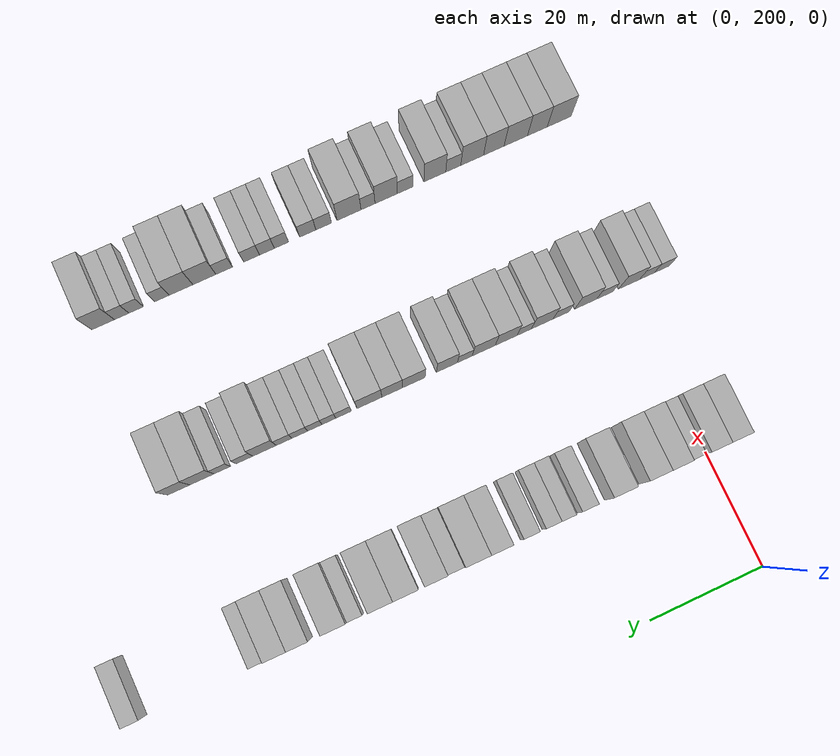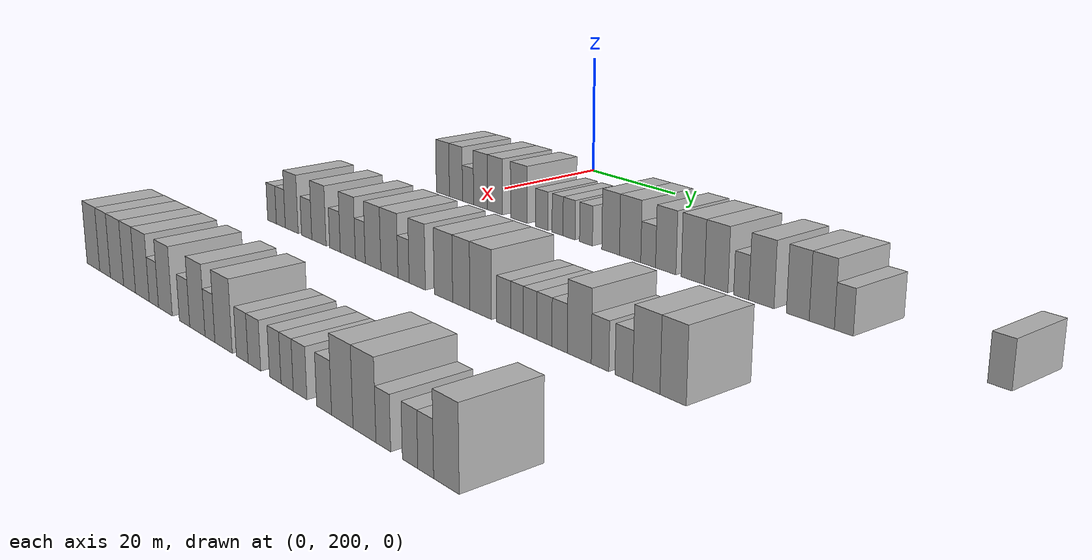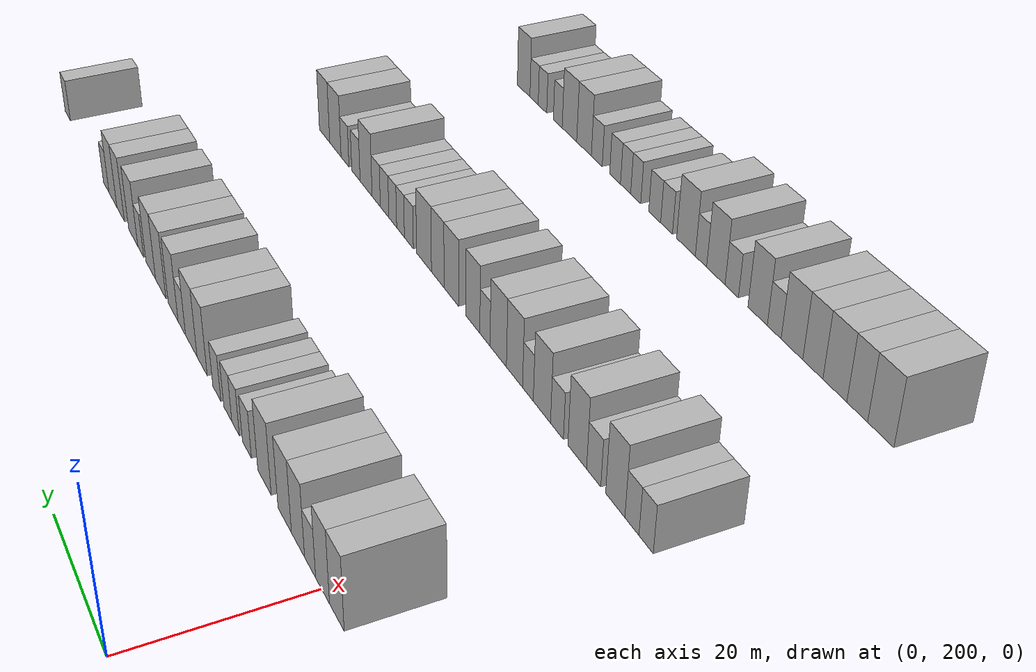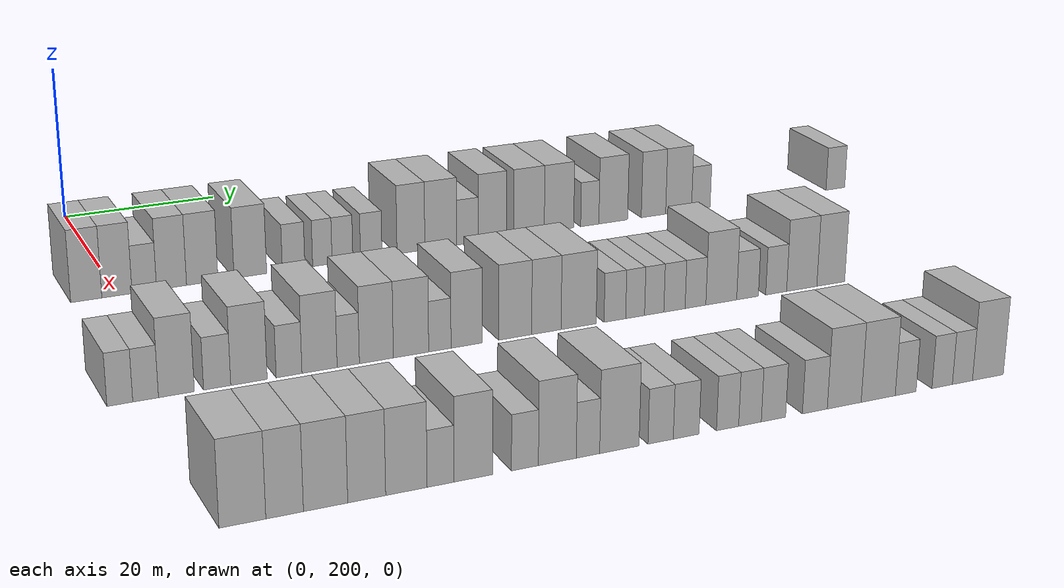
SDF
<sdf version="1.6">
 <world name="default">
  <model name="building_122">
   <static>1</static>
   <pose>25.0000 196.1060 0 0.000000 0.000000 0.000000</pose>
   <link name="link">
    <pose>0 0 4.50 0 0 0</pose>
    <collision name="collision"><geometry><box><size>10.0000 3.6825 9.0000</size></box></geometry></collision>
    <visual name="visual">
     <cast_shadows>0</cast_shadows>
     <geometry><box><size>10.0000 3.6825 9.0000</size></box></geometry>
     <material>
      <script>
       <uri>model://HANNAS_wall/materials/scripts</uri>
       <uri>model://HANNAS_wall/materials/textures</uri>
       <name>vrc/HANNAS_wall</name>
      </script>
     </material>
    </visual>
   </link>
  </model>
  <model name="building_123">
   <static>1</static>
   <pose>25.0000 199.7575 0 0.000000 0.000000 0.000000</pose>
   <link name="link">
    <pose>0 0 4.50 0 0 0</pose>
    <collision name="collision"><geometry><box><size>10.0000 3.6205 9.0000</size></box></geometry></collision>
    <visual name="visual">
     <cast_shadows>0</cast_shadows>
     <geometry><box><size>10.0000 3.6205 9.0000</size></box></geometry>
     <material>
      <script>
       <uri>model://HANNAS_wall/materials/scripts</uri>
       <uri>model://HANNAS_wall/materials/textures</uri>
       <name>vrc/HANNAS_wall</name>
      </script>
     </material>
    </visual>
   </link>
  </model>
  <model name="building_124">
   <static>1</static>
   <pose>25.0000 203.0524 0 0.000000 0.000000 0.000000</pose>
   <link name="link">
    <pose>0 0 3.00 0 0 0</pose>
    <collision name="collision"><geometry><box><size>10.0000 2.9692 6.0000</size></box></geometry></collision>
    <visual name="visual">
     <cast_shadows>0</cast_shadows>
     <geometry><box><size>10.0000 2.9692 6.0000</size></box></geometry>
     <material>
      <script>
       <uri>model://HANNAS_wall/materials/scripts</uri>
       <uri>model://HANNAS_wall/materials/textures</uri>
       <name>vrc/HANNAS_wall</name>
      </script>
     </material>
    </visual>
   </link>
  </model>
  <model name="building_125">
   <static>1</static>
   <pose>25.0000 206.3679 0 0.000000 0.000000 0.000000</pose>
   <link name="link">
    <pose>0 0 4.50 0 0 0</pose>
    <collision name="collision"><geometry><box><size>10.0000 3.6618 9.0000</size></box></geometry></collision>
    <visual name="visual">
     <cast_shadows>0</cast_shadows>
     <geometry><box><size>10.0000 3.6618 9.0000</size></box></geometry>
     <material>
      <script>
       <uri>model://HANNAS_wall/materials/scripts</uri>
       <uri>model://HANNAS_wall/materials/textures</uri>
       <name>vrc/HANNAS_wall</name>
      </script>
     </material>
    </visual>
   </link>
  </model>
  <model name="building_126">
   <static>1</static>
   <pose>25.0000 210.1413 0 0.000000 0.000000 0.000000</pose>
   <link name="link">
    <pose>0 0 4.50 0 0 0</pose>
    <collision name="collision"><geometry><box><size>10.0000 3.8852 9.0000</size></box></geometry></collision>
    <visual name="visual">
     <cast_shadows>0</cast_shadows>
     <geometry><box><size>10.0000 3.8852 9.0000</size></box></geometry>
     <material>
      <script>
       <uri>model://HANNAS_wall/materials/scripts</uri>
       <uri>model://HANNAS_wall/materials/textures</uri>
       <name>vrc/HANNAS_wall</name>
      </script>
     </material>
    </visual>
   </link>
  </model>
  <model name="building_127">
   <static>1</static>
   <pose>25.0000 216.1379 0 0.000000 0.000000 0.000000</pose>
   <link name="link">
    <pose>0 0 4.50 0 0 0</pose>
    <collision name="collision"><geometry><box><size>10.0000 4.1079 9.0000</size></box></geometry></collision>
    <visual name="visual">
     <cast_shadows>0</cast_shadows>
     <geometry><box><size>10.0000 4.1079 9.0000</size></box></geometry>
     <material>
      <script>
       <uri>model://HANNAS_wall/materials/scripts</uri>
       <uri>model://HANNAS_wall/materials/textures</uri>
       <name>vrc/HANNAS_wall</name>
      </script>
     </material>
    </visual>
   </link>
  </model>
  <model name="building_128">
   <static>1</static>
   <pose>25.0000 221.6306 0 0.000000 0.000000 0.000000</pose>
   <link name="link">
    <pose>0 0 3.00 0 0 0</pose>
    <collision name="collision"><geometry><box><size>10.0000 2.8776 6.0000</size></box></geometry></collision>
    <visual name="visual">
     <cast_shadows>0</cast_shadows>
     <geometry><box><size>10.0000 2.8776 6.0000</size></box></geometry>
     <material>
      <script>
       <uri>model://HANNAS_wall/materials/scripts</uri>
       <uri>model://HANNAS_wall/materials/textures</uri>
       <name>vrc/HANNAS_wall</name>
      </script>
     </material>
    </visual>
   </link>
  </model>
  <model name="building_129">
   <static>1</static>
   <pose>25.0000 225.3276 0 0.000000 0.000000 0.000000</pose>
   <link name="link">
    <pose>0 0 3.00 0 0 0</pose>
    <collision name="collision"><geometry><box><size>10.0000 2.5163 6.0000</size></box></geometry></collision>
    <visual name="visual">
     <cast_shadows>0</cast_shadows>
     <geometry><box><size>10.0000 2.5163 6.0000</size></box></geometry>
     <material>
      <script>
       <uri>model://HANNAS_wall/materials/scripts</uri>
       <uri>model://HANNAS_wall/materials/textures</uri>
       <name>vrc/HANNAS_wall</name>
      </script>
     </material>
    </visual>
   </link>
  </model>
  <model name="building_130">
   <static>1</static>
   <pose>25.0000 227.9405 0 0.000000 0.000000 0.000000</pose>
   <link name="link">
    <pose>0 0 3.00 0 0 0</pose>
    <collision name="collision"><geometry><box><size>10.0000 2.7095 6.0000</size></box></geometry></collision>
    <visual name="visual">
     <cast_shadows>0</cast_shadows>
     <geometry><box><size>10.0000 2.7095 6.0000</size></box></geometry>
     <material>
      <script>
       <uri>model://HANNAS_wall/materials/scripts</uri>
       <uri>model://HANNAS_wall/materials/textures</uri>
       <name>vrc/HANNAS_wall</name>
      </script>
     </material>
    </visual>
   </link>
  </model>
  <model name="building_131">
   <static>1</static>
   <pose>25.0000 231.7095 0 0.000000 0.000000 0.000000</pose>
   <link name="link">
    <pose>0 0 3.00 0 0 0</pose>
    <collision name="collision"><geometry><box><size>10.0000 2.8285 6.0000</size></box></geometry></collision>
    <visual name="visual">
     <cast_shadows>0</cast_shadows>
     <geometry><box><size>10.0000 2.8285 6.0000</size></box></geometry>
     <material>
      <script>
       <uri>model://HANNAS_wall/materials/scripts</uri>
       <uri>model://HANNAS_wall/materials/textures</uri>
       <name>vrc/HANNAS_wall</name>
      </script>
     </material>
    </visual>
   </link>
  </model>
  <model name="building_132">
   <static>1</static>
   <pose>25.0000 236.9901 0 0.000000 0.000000 0.000000</pose>
   <link name="link">
    <pose>0 0 4.50 0 0 0</pose>
    <collision name="collision"><geometry><box><size>10.0000 3.7327 9.0000</size></box></geometry></collision>
    <visual name="visual">
     <cast_shadows>0</cast_shadows>
     <geometry><box><size>10.0000 3.7327 9.0000</size></box></geometry>
     <material>
      <script>
       <uri>model://HANNAS_wall/materials/scripts</uri>
       <uri>model://HANNAS_wall/materials/textures</uri>
       <name>vrc/HANNAS_wall</name>
      </script>
     </material>
    </visual>
   </link>
  </model>
  <model name="building_133">
   <static>1</static>
   <pose>25.0000 241.0207 0 0.000000 0.000000 0.000000</pose>
   <link name="link">
    <pose>0 0 4.50 0 0 0</pose>
    <collision name="collision"><geometry><box><size>10.0000 4.3285 9.0000</size></box></geometry></collision>
    <visual name="visual">
     <cast_shadows>0</cast_shadows>
     <geometry><box><size>10.0000 4.3285 9.0000</size></box></geometry>
     <material>
      <script>
       <uri>model://HANNAS_wall/materials/scripts</uri>
       <uri>model://HANNAS_wall/materials/textures</uri>
       <name>vrc/HANNAS_wall</name>
      </script>
     </material>
    </visual>
   </link>
  </model>
  <model name="building_134">
   <static>1</static>
   <pose>25.0000 244.6504 0 0.000000 0.000000 0.000000</pose>
   <link name="link">
    <pose>0 0 3.00 0 0 0</pose>
    <collision name="collision"><geometry><box><size>10.0000 2.9309 6.0000</size></box></geometry></collision>
    <visual name="visual">
     <cast_shadows>0</cast_shadows>
     <geometry><box><size>10.0000 2.9309 6.0000</size></box></geometry>
     <material>
      <script>
       <uri>model://HANNAS_wall/materials/scripts</uri>
       <uri>model://HANNAS_wall/materials/textures</uri>
       <name>vrc/HANNAS_wall</name>
      </script>
     </material>
    </visual>
   </link>
  </model>
  <model name="building_135">
   <static>1</static>
   <pose>25.0000 248.0774 0 0.000000 0.000000 0.000000</pose>
   <link name="link">
    <pose>0 0 4.50 0 0 0</pose>
    <collision name="collision"><geometry><box><size>10.0000 3.9231 9.0000</size></box></geometry></collision>
    <visual name="visual">
     <cast_shadows>0</cast_shadows>
     <geometry><box><size>10.0000 3.9231 9.0000</size></box></geometry>
     <material>
      <script>
       <uri>model://HANNAS_wall/materials/scripts</uri>
       <uri>model://HANNAS_wall/materials/textures</uri>
       <name>vrc/HANNAS_wall</name>
      </script>
     </material>
    </visual>
   </link>
  </model>
  <model name="building_136">
   <static>1</static>
   <pose>25.0000 253.1826 0 0.000000 0.000000 0.000000</pose>
   <link name="link">
    <pose>0 0 4.50 0 0 0</pose>
    <collision name="collision"><geometry><box><size>10.0000 4.2872 9.0000</size></box></geometry></collision>
    <visual name="visual">
     <cast_shadows>0</cast_shadows>
     <geometry><box><size>10.0000 4.2872 9.0000</size></box></geometry>
     <material>
      <script>
       <uri>model://HANNAS_wall/materials/scripts</uri>
       <uri>model://HANNAS_wall/materials/textures</uri>
       <name>vrc/HANNAS_wall</name>
      </script>
     </material>
    </visual>
   </link>
  </model>
  <model name="building_137">
   <static>1</static>
   <pose>25.0000 257.4183 0 0.000000 0.000000 0.000000</pose>
   <link name="link">
    <pose>0 0 4.50 0 0 0</pose>
    <collision name="collision"><geometry><box><size>10.0000 4.1843 9.0000</size></box></geometry></collision>
    <visual name="visual">
     <cast_shadows>0</cast_shadows>
     <geometry><box><size>10.0000 4.1843 9.0000</size></box></geometry>
     <material>
      <script>
       <uri>model://HANNAS_wall/materials/scripts</uri>
       <uri>model://HANNAS_wall/materials/textures</uri>
       <name>vrc/HANNAS_wall</name>
      </script>
     </material>
    </visual>
   </link>
  </model>
  <model name="building_138">
   <static>1</static>
   <pose>25.0000 261.8183 0 0.000000 0.000000 0.000000</pose>
   <link name="link">
    <pose>0 0 3.00 0 0 0</pose>
    <collision name="collision"><geometry><box><size>10.0000 2.6156 6.0000</size></box></geometry></collision>
    <visual name="visual">
     <cast_shadows>0</cast_shadows>
     <geometry><box><size>10.0000 2.6156 6.0000</size></box></geometry>
     <material>
      <script>
       <uri>model://HANNAS_wall/materials/scripts</uri>
       <uri>model://HANNAS_wall/materials/textures</uri>
       <name>vrc/HANNAS_wall</name>
      </script>
     </material>
    </visual>
   </link>
  </model>
  <model name="building_139">
   <static>1</static>
   <pose>25.0000 265.2148 0 0.000000 0.000000 0.000000</pose>
   <link name="link">
    <pose>0 0 4.50 0 0 0</pose>
    <collision name="collision"><geometry><box><size>10.0000 4.1774 9.0000</size></box></geometry></collision>
    <visual name="visual">
     <cast_shadows>0</cast_shadows>
     <geometry><box><size>10.0000 4.1774 9.0000</size></box></geometry>
     <material>
      <script>
       <uri>model://HANNAS_wall/materials/scripts</uri>
       <uri>model://HANNAS_wall/materials/textures</uri>
       <name>vrc/HANNAS_wall</name>
      </script>
     </material>
    </visual>
   </link>
  </model>
  <model name="building_140">
   <static>1</static>
   <pose>25.0000 271.1062 0 0.000000 0.000000 0.000000</pose>
   <link name="link">
    <pose>0 0 4.50 0 0 0</pose>
    <collision name="collision"><geometry><box><size>10.0000 3.6055 9.0000</size></box></geometry></collision>
    <visual name="visual">
     <cast_shadows>0</cast_shadows>
     <geometry><box><size>10.0000 3.6055 9.0000</size></box></geometry>
     <material>
      <script>
       <uri>model://HANNAS_wall/materials/scripts</uri>
       <uri>model://HANNAS_wall/materials/textures</uri>
       <name>vrc/HANNAS_wall</name>
      </script>
     </material>
    </visual>
   </link>
  </model>
  <model name="building_141">
   <static>1</static>
   <pose>25.0000 274.8400 0 0.000000 0.000000 0.000000</pose>
   <link name="link">
    <pose>0 0 4.50 0 0 0</pose>
    <collision name="collision"><geometry><box><size>10.0000 3.8622 9.0000</size></box></geometry></collision>
    <visual name="visual">
     <cast_shadows>0</cast_shadows>
     <geometry><box><size>10.0000 3.8622 9.0000</size></box></geometry>
     <material>
      <script>
       <uri>model://HANNAS_wall/materials/scripts</uri>
       <uri>model://HANNAS_wall/materials/textures</uri>
       <name>vrc/HANNAS_wall</name>
      </script>
     </material>
    </visual>
   </link>
  </model>
  <model name="building_142">
   <static>1</static>
   <pose>25.0000 278.1715 0 0.000000 0.000000 0.000000</pose>
   <link name="link">
    <pose>0 0 3.00 0 0 0</pose>
    <collision name="collision"><geometry><box><size>10.0000 2.8008 6.0000</size></box></geometry></collision>
    <visual name="visual">
     <cast_shadows>0</cast_shadows>
     <geometry><box><size>10.0000 2.8008 6.0000</size></box></geometry>
     <material>
      <script>
       <uri>model://HANNAS_wall/materials/scripts</uri>
       <uri>model://HANNAS_wall/materials/textures</uri>
       <name>vrc/HANNAS_wall</name>
      </script>
     </material>
    </visual>
   </link>
  </model>
  <model name="building_143">
   <static>1</static>
   <pose>25.0000 299.0426 0 0.000000 0.000000 0.000000</pose>
   <link name="link">
    <pose>0 0 3.00 0 0 0</pose>
    <collision name="collision"><geometry><box><size>10.0000 2.9805 6.0000</size></box></geometry></collision>
    <visual name="visual">
     <cast_shadows>0</cast_shadows>
     <geometry><box><size>10.0000 2.9805 6.0000</size></box></geometry>
     <material>
      <script>
       <uri>model://HANNAS_wall/materials/scripts</uri>
       <uri>model://HANNAS_wall/materials/textures</uri>
       <name>vrc/HANNAS_wall</name>
      </script>
     </material>
    </visual>
   </link>
  </model>
  <model name="building_254">
   <static>1</static>
   <pose>55.0000 192.9333 0 0.000000 0.000000 0.000000</pose>
   <link name="link">
    <pose>0 0 3.00 0 0 0</pose>
    <collision name="collision"><geometry><box><size>10.0000 2.7269 6.0000</size></box></geometry></collision>
    <visual name="visual">
     <cast_shadows>0</cast_shadows>
     <geometry><box><size>10.0000 2.7269 6.0000</size></box></geometry>
     <material>
      <script>
       <uri>model://HANNAS_wall/materials/scripts</uri>
       <uri>model://HANNAS_wall/materials/textures</uri>
       <name>vrc/HANNAS_wall</name>
      </script>
     </material>
    </visual>
   </link>
  </model>
  <model name="building_255">
   <static>1</static>
   <pose>55.0000 195.6646 0 0.000000 0.000000 0.000000</pose>
   <link name="link">
    <pose>0 0 3.00 0 0 0</pose>
    <collision name="collision"><geometry><box><size>10.0000 2.7356 6.0000</size></box></geometry></collision>
    <visual name="visual">
     <cast_shadows>0</cast_shadows>
     <geometry><box><size>10.0000 2.7356 6.0000</size></box></geometry>
     <material>
      <script>
       <uri>model://HANNAS_wall/materials/scripts</uri>
       <uri>model://HANNAS_wall/materials/textures</uri>
       <name>vrc/HANNAS_wall</name>
      </script>
     </material>
    </visual>
   </link>
  </model>
  <model name="building_256">
   <static>1</static>
   <pose>55.0000 198.9658 0 0.000000 0.000000 0.000000</pose>
   <link name="link">
    <pose>0 0 4.50 0 0 0</pose>
    <collision name="collision"><geometry><box><size>10.0000 3.8670 9.0000</size></box></geometry></collision>
    <visual name="visual">
     <cast_shadows>0</cast_shadows>
     <geometry><box><size>10.0000 3.8670 9.0000</size></box></geometry>
     <material>
      <script>
       <uri>model://HANNAS_wall/materials/scripts</uri>
       <uri>model://HANNAS_wall/materials/textures</uri>
       <name>vrc/HANNAS_wall</name>
      </script>
     </material>
    </visual>
   </link>
  </model>
  <model name="building_257">
   <static>1</static>
   <pose>55.0000 203.3865 0 0.000000 0.000000 0.000000</pose>
   <link name="link">
    <pose>0 0 3.00 0 0 0</pose>
    <collision name="collision"><geometry><box><size>10.0000 2.9744 6.0000</size></box></geometry></collision>
    <visual name="visual">
     <cast_shadows>0</cast_shadows>
     <geometry><box><size>10.0000 2.9744 6.0000</size></box></geometry>
     <material>
      <script>
       <uri>model://HANNAS_wall/materials/scripts</uri>
       <uri>model://HANNAS_wall/materials/textures</uri>
       <name>vrc/HANNAS_wall</name>
      </script>
     </material>
    </visual>
   </link>
  </model>
  <model name="building_258">
   <static>1</static>
   <pose>55.0000 206.8915 0 0.000000 0.000000 0.000000</pose>
   <link name="link">
    <pose>0 0 4.50 0 0 0</pose>
    <collision name="collision"><geometry><box><size>10.0000 4.0356 9.0000</size></box></geometry></collision>
    <visual name="visual">
     <cast_shadows>0</cast_shadows>
     <geometry><box><size>10.0000 4.0356 9.0000</size></box></geometry>
     <material>
      <script>
       <uri>model://HANNAS_wall/materials/scripts</uri>
       <uri>model://HANNAS_wall/materials/textures</uri>
       <name>vrc/HANNAS_wall</name>
      </script>
     </material>
    </visual>
   </link>
  </model>
  <model name="building_259">
   <static>1</static>
   <pose>55.0000 211.3585 0 0.000000 0.000000 0.000000</pose>
   <link name="link">
    <pose>0 0 3.00 0 0 0</pose>
    <collision name="collision"><geometry><box><size>10.0000 2.8984 6.0000</size></box></geometry></collision>
    <visual name="visual">
     <cast_shadows>0</cast_shadows>
     <geometry><box><size>10.0000 2.8984 6.0000</size></box></geometry>
     <material>
      <script>
       <uri>model://HANNAS_wall/materials/scripts</uri>
       <uri>model://HANNAS_wall/materials/textures</uri>
       <name>vrc/HANNAS_wall</name>
      </script>
     </material>
    </visual>
   </link>
  </model>
  <model name="building_260">
   <static>1</static>
   <pose>55.0000 214.8073 0 0.000000 0.000000 0.000000</pose>
   <link name="link">
    <pose>0 0 4.50 0 0 0</pose>
    <collision name="collision"><geometry><box><size>10.0000 3.9993 9.0000</size></box></geometry></collision>
    <visual name="visual">
     <cast_shadows>0</cast_shadows>
     <geometry><box><size>10.0000 3.9993 9.0000</size></box></geometry>
     <material>
      <script>
       <uri>model://HANNAS_wall/materials/scripts</uri>
       <uri>model://HANNAS_wall/materials/textures</uri>
       <name>vrc/HANNAS_wall</name>
      </script>
     </material>
    </visual>
   </link>
  </model>
  <model name="building_261">
   <static>1</static>
   <pose>55.0000 218.0887 0 0.000000 0.000000 0.000000</pose>
   <link name="link">
    <pose>0 0 3.00 0 0 0</pose>
    <collision name="collision"><geometry><box><size>10.0000 2.5636 6.0000</size></box></geometry></collision>
    <visual name="visual">
     <cast_shadows>0</cast_shadows>
     <geometry><box><size>10.0000 2.5636 6.0000</size></box></geometry>
     <material>
      <script>
       <uri>model://HANNAS_wall/materials/scripts</uri>
       <uri>model://HANNAS_wall/materials/textures</uri>
       <name>vrc/HANNAS_wall</name>
      </script>
     </material>
    </visual>
   </link>
  </model>
  <model name="building_262">
   <static>1</static>
   <pose>55.0000 221.3486 0 0.000000 0.000000 0.000000</pose>
   <link name="link">
    <pose>0 0 4.50 0 0 0</pose>
    <collision name="collision"><geometry><box><size>10.0000 3.9561 9.0000</size></box></geometry></collision>
    <visual name="visual">
     <cast_shadows>0</cast_shadows>
     <geometry><box><size>10.0000 3.9561 9.0000</size></box></geometry>
     <material>
      <script>
       <uri>model://HANNAS_wall/materials/scripts</uri>
       <uri>model://HANNAS_wall/materials/textures</uri>
       <name>vrc/HANNAS_wall</name>
      </script>
     </material>
    </visual>
   </link>
  </model>
  <model name="building_263">
   <static>1</static>
   <pose>55.0000 225.4048 0 0.000000 0.000000 0.000000</pose>
   <link name="link">
    <pose>0 0 4.50 0 0 0</pose>
    <collision name="collision"><geometry><box><size>10.0000 4.1564 9.0000</size></box></geometry></collision>
    <visual name="visual">
     <cast_shadows>0</cast_shadows>
     <geometry><box><size>10.0000 4.1564 9.0000</size></box></geometry>
     <material>
      <script>
       <uri>model://HANNAS_wall/materials/scripts</uri>
       <uri>model://HANNAS_wall/materials/textures</uri>
       <name>vrc/HANNAS_wall</name>
      </script>
     </material>
    </visual>
   </link>
  </model>
  <model name="building_264">
   <static>1</static>
   <pose>55.0000 228.8156 0 0.000000 0.000000 0.000000</pose>
   <link name="link">
    <pose>0 0 3.00 0 0 0</pose>
    <collision name="collision"><geometry><box><size>10.0000 2.6651 6.0000</size></box></geometry></collision>
    <visual name="visual">
     <cast_shadows>0</cast_shadows>
     <geometry><box><size>10.0000 2.6651 6.0000</size></box></geometry>
     <material>
      <script>
       <uri>model://HANNAS_wall/materials/scripts</uri>
       <uri>model://HANNAS_wall/materials/textures</uri>
       <name>vrc/HANNAS_wall</name>
      </script>
     </material>
    </visual>
   </link>
  </model>
  <model name="building_265">
   <static>1</static>
   <pose>55.0000 232.0264 0 0.000000 0.000000 0.000000</pose>
   <link name="link">
    <pose>0 0 4.50 0 0 0</pose>
    <collision name="collision"><geometry><box><size>10.0000 3.7566 9.0000</size></box></geometry></collision>
    <visual name="visual">
     <cast_shadows>0</cast_shadows>
     <geometry><box><size>10.0000 3.7566 9.0000</size></box></geometry>
     <material>
      <script>
       <uri>model://HANNAS_wall/materials/scripts</uri>
       <uri>model://HANNAS_wall/materials/textures</uri>
       <name>vrc/HANNAS_wall</name>
      </script>
     </material>
    </visual>
   </link>
  </model>
  <model name="building_266">
   <static>1</static>
   <pose>55.0000 237.9301 0 0.000000 0.000000 0.000000</pose>
   <link name="link">
    <pose>0 0 4.50 0 0 0</pose>
    <collision name="collision"><geometry><box><size>10.0000 4.0507 9.0000</size></box></geometry></collision>
    <visual name="visual">
     <cast_shadows>0</cast_shadows>
     <geometry><box><size>10.0000 4.0507 9.0000</size></box></geometry>
     <material>
      <script>
       <uri>model://HANNAS_wall/materials/scripts</uri>
       <uri>model://HANNAS_wall/materials/textures</uri>
       <name>vrc/HANNAS_wall</name>
      </script>
     </material>
    </visual>
   </link>
  </model>
  <model name="building_267">
   <static>1</static>
   <pose>55.0000 241.7855 0 0.000000 0.000000 0.000000</pose>
   <link name="link">
    <pose>0 0 4.50 0 0 0</pose>
    <collision name="collision"><geometry><box><size>10.0000 3.6601 9.0000</size></box></geometry></collision>
    <visual name="visual">
     <cast_shadows>0</cast_shadows>
     <geometry><box><size>10.0000 3.6601 9.0000</size></box></geometry>
     <material>
      <script>
       <uri>model://HANNAS_wall/materials/scripts</uri>
       <uri>model://HANNAS_wall/materials/textures</uri>
       <name>vrc/HANNAS_wall</name>
      </script>
     </material>
    </visual>
   </link>
  </model>
  <model name="building_268">
   <static>1</static>
   <pose>55.0000 245.8311 0 0.000000 0.000000 0.000000</pose>
   <link name="link">
    <pose>0 0 4.50 0 0 0</pose>
    <collision name="collision"><geometry><box><size>10.0000 4.4311 9.0000</size></box></geometry></collision>
    <visual name="visual">
     <cast_shadows>0</cast_shadows>
     <geometry><box><size>10.0000 4.4311 9.0000</size></box></geometry>
     <material>
      <script>
       <uri>model://HANNAS_wall/materials/scripts</uri>
       <uri>model://HANNAS_wall/materials/textures</uri>
       <name>vrc/HANNAS_wall</name>
      </script>
     </material>
    </visual>
   </link>
  </model>
  <model name="building_269">
   <static>1</static>
   <pose>55.0000 250.4284 0 0.000000 0.000000 0.000000</pose>
   <link name="link">
    <pose>0 0 3.00 0 0 0</pose>
    <collision name="collision"><geometry><box><size>10.0000 2.7633 6.0000</size></box></geometry></collision>
    <visual name="visual">
     <cast_shadows>0</cast_shadows>
     <geometry><box><size>10.0000 2.7633 6.0000</size></box></geometry>
     <material>
      <script>
       <uri>model://HANNAS_wall/materials/scripts</uri>
       <uri>model://HANNAS_wall/materials/textures</uri>
       <name>vrc/HANNAS_wall</name>
      </script>
     </material>
    </visual>
   </link>
  </model>
  <model name="building_270">
   <static>1</static>
   <pose>55.0000 253.0307 0 0.000000 0.000000 0.000000</pose>
   <link name="link">
    <pose>0 0 3.00 0 0 0</pose>
    <collision name="collision"><geometry><box><size>10.0000 2.4414 6.0000</size></box></geometry></collision>
    <visual name="visual">
     <cast_shadows>0</cast_shadows>
     <geometry><box><size>10.0000 2.4414 6.0000</size></box></geometry>
     <material>
      <script>
       <uri>model://HANNAS_wall/materials/scripts</uri>
       <uri>model://HANNAS_wall/materials/textures</uri>
       <name>vrc/HANNAS_wall</name>
      </script>
     </material>
    </visual>
   </link>
  </model>
  <model name="building_271">
   <static>1</static>
   <pose>55.0000 255.5047 0 0.000000 0.000000 0.000000</pose>
   <link name="link">
    <pose>0 0 3.00 0 0 0</pose>
    <collision name="collision"><geometry><box><size>10.0000 2.5066 6.0000</size></box></geometry></collision>
    <visual name="visual">
     <cast_shadows>0</cast_shadows>
     <geometry><box><size>10.0000 2.5066 6.0000</size></box></geometry>
     <material>
      <script>
       <uri>model://HANNAS_wall/materials/scripts</uri>
       <uri>model://HANNAS_wall/materials/textures</uri>
       <name>vrc/HANNAS_wall</name>
      </script>
     </material>
    </visual>
   </link>
  </model>
  <model name="building_272">
   <static>1</static>
   <pose>55.0000 258.1538 0 0.000000 0.000000 0.000000</pose>
   <link name="link">
    <pose>0 0 3.00 0 0 0</pose>
    <collision name="collision"><geometry><box><size>10.0000 2.7916 6.0000</size></box></geometry></collision>
    <visual name="visual">
     <cast_shadows>0</cast_shadows>
     <geometry><box><size>10.0000 2.7916 6.0000</size></box></geometry>
     <material>
      <script>
       <uri>model://HANNAS_wall/materials/scripts</uri>
       <uri>model://HANNAS_wall/materials/textures</uri>
       <name>vrc/HANNAS_wall</name>
      </script>
     </material>
    </visual>
   </link>
  </model>
  <model name="building_273">
   <static>1</static>
   <pose>55.0000 260.9226 0 0.000000 0.000000 0.000000</pose>
   <link name="link">
    <pose>0 0 3.00 0 0 0</pose>
    <collision name="collision"><geometry><box><size>10.0000 2.7461 6.0000</size></box></geometry></collision>
    <visual name="visual">
     <cast_shadows>0</cast_shadows>
     <geometry><box><size>10.0000 2.7461 6.0000</size></box></geometry>
     <material>
      <script>
       <uri>model://HANNAS_wall/materials/scripts</uri>
       <uri>model://HANNAS_wall/materials/textures</uri>
       <name>vrc/HANNAS_wall</name>
      </script>
     </material>
    </visual>
   </link>
  </model>
  <model name="building_274">
   <static>1</static>
   <pose>55.0000 264.3590 0 0.000000 0.000000 0.000000</pose>
   <link name="link">
    <pose>0 0 4.50 0 0 0</pose>
    <collision name="collision"><geometry><box><size>10.0000 4.1267 9.0000</size></box></geometry></collision>
    <visual name="visual">
     <cast_shadows>0</cast_shadows>
     <geometry><box><size>10.0000 4.1267 9.0000</size></box></geometry>
     <material>
      <script>
       <uri>model://HANNAS_wall/materials/scripts</uri>
       <uri>model://HANNAS_wall/materials/textures</uri>
       <name>vrc/HANNAS_wall</name>
      </script>
     </material>
    </visual>
   </link>
  </model>
  <model name="building_275">
   <static>1</static>
   <pose>55.0000 267.8874 0 0.000000 0.000000 0.000000</pose>
   <link name="link">
    <pose>0 0 3.00 0 0 0</pose>
    <collision name="collision"><geometry><box><size>10.0000 2.9301 6.0000</size></box></geometry></collision>
    <visual name="visual">
     <cast_shadows>0</cast_shadows>
     <geometry><box><size>10.0000 2.9301 6.0000</size></box></geometry>
     <material>
      <script>
       <uri>model://HANNAS_wall/materials/scripts</uri>
       <uri>model://HANNAS_wall/materials/textures</uri>
       <name>vrc/HANNAS_wall</name>
      </script>
     </material>
    </visual>
   </link>
  </model>
  <model name="building_276">
   <static>1</static>
   <pose>55.0000 271.7827 0 0.000000 0.000000 0.000000</pose>
   <link name="link">
    <pose>0 0 3.00 0 0 0</pose>
    <collision name="collision"><geometry><box><size>10.0000 2.8604 6.0000</size></box></geometry></collision>
    <visual name="visual">
     <cast_shadows>0</cast_shadows>
     <geometry><box><size>10.0000 2.8604 6.0000</size></box></geometry>
     <material>
      <script>
       <uri>model://HANNAS_wall/materials/scripts</uri>
       <uri>model://HANNAS_wall/materials/textures</uri>
       <name>vrc/HANNAS_wall</name>
      </script>
     </material>
    </visual>
   </link>
  </model>
  <model name="building_277">
   <static>1</static>
   <pose>55.0000 275.3061 0 0.000000 0.000000 0.000000</pose>
   <link name="link">
    <pose>0 0 4.50 0 0 0</pose>
    <collision name="collision"><geometry><box><size>10.0000 4.1864 9.0000</size></box></geometry></collision>
    <visual name="visual">
     <cast_shadows>0</cast_shadows>
     <geometry><box><size>10.0000 4.1864 9.0000</size></box></geometry>
     <material>
      <script>
       <uri>model://HANNAS_wall/materials/scripts</uri>
       <uri>model://HANNAS_wall/materials/textures</uri>
       <name>vrc/HANNAS_wall</name>
      </script>
     </material>
    </visual>
   </link>
  </model>
  <model name="building_278">
   <static>1</static>
   <pose>55.0000 279.3473 0 0.000000 0.000000 0.000000</pose>
   <link name="link">
    <pose>0 0 4.50 0 0 0</pose>
    <collision name="collision"><geometry><box><size>10.0000 3.8961 9.0000</size></box></geometry></collision>
    <visual name="visual">
     <cast_shadows>0</cast_shadows>
     <geometry><box><size>10.0000 3.8961 9.0000</size></box></geometry>
     <material>
      <script>
       <uri>model://HANNAS_wall/materials/scripts</uri>
       <uri>model://HANNAS_wall/materials/textures</uri>
       <name>vrc/HANNAS_wall</name>
      </script>
     </material>
    </visual>
   </link>
  </model>
  <model name="building_397">
   <static>1</static>
   <pose>85.0000 197.1885 0 0.000000 0.000000 0.000000</pose>
   <link name="link">
    <pose>0 0 4.50 0 0 0</pose>
    <collision name="collision"><geometry><box><size>10.0000 4.4709 9.0000</size></box></geometry></collision>
    <visual name="visual">
     <cast_shadows>0</cast_shadows>
     <geometry><box><size>10.0000 4.4709 9.0000</size></box></geometry>
     <material>
      <script>
       <uri>model://HANNAS_wall/materials/scripts</uri>
       <uri>model://HANNAS_wall/materials/textures</uri>
       <name>vrc/HANNAS_wall</name>
      </script>
     </material>
    </visual>
   </link>
  </model>
  <model name="building_398">
   <static>1</static>
   <pose>85.0000 201.2471 0 0.000000 0.000000 0.000000</pose>
   <link name="link">
    <pose>0 0 4.50 0 0 0</pose>
    <collision name="collision"><geometry><box><size>10.0000 3.6464 9.0000</size></box></geometry></collision>
    <visual name="visual">
     <cast_shadows>0</cast_shadows>
     <geometry><box><size>10.0000 3.6464 9.0000</size></box></geometry>
     <material>
      <script>
       <uri>model://HANNAS_wall/materials/scripts</uri>
       <uri>model://HANNAS_wall/materials/textures</uri>
       <name>vrc/HANNAS_wall</name>
      </script>
     </material>
    </visual>
   </link>
  </model>
  <model name="building_399">
   <static>1</static>
   <pose>85.0000 205.2502 0 0.000000 0.000000 0.000000</pose>
   <link name="link">
    <pose>0 0 4.50 0 0 0</pose>
    <collision name="collision"><geometry><box><size>10.0000 4.3598 9.0000</size></box></geometry></collision>
    <visual name="visual">
     <cast_shadows>0</cast_shadows>
     <geometry><box><size>10.0000 4.3598 9.0000</size></box></geometry>
     <material>
      <script>
       <uri>model://HANNAS_wall/materials/scripts</uri>
       <uri>model://HANNAS_wall/materials/textures</uri>
       <name>vrc/HANNAS_wall</name>
      </script>
     </material>
    </visual>
   </link>
  </model>
  <model name="building_400">
   <static>1</static>
   <pose>85.0000 209.3293 0 0.000000 0.000000 0.000000</pose>
   <link name="link">
    <pose>0 0 4.50 0 0 0</pose>
    <collision name="collision"><geometry><box><size>10.0000 3.7984 9.0000</size></box></geometry></collision>
    <visual name="visual">
     <cast_shadows>0</cast_shadows>
     <geometry><box><size>10.0000 3.7984 9.0000</size></box></geometry>
     <material>
      <script>
       <uri>model://HANNAS_wall/materials/scripts</uri>
       <uri>model://HANNAS_wall/materials/textures</uri>
       <name>vrc/HANNAS_wall</name>
      </script>
     </material>
    </visual>
   </link>
  </model>
  <model name="building_401">
   <static>1</static>
   <pose>85.0000 213.3348 0 0.000000 0.000000 0.000000</pose>
   <link name="link">
    <pose>0 0 4.50 0 0 0</pose>
    <collision name="collision"><geometry><box><size>10.0000 4.2126 9.0000</size></box></geometry></collision>
    <visual name="visual">
     <cast_shadows>0</cast_shadows>
     <geometry><box><size>10.0000 4.2126 9.0000</size></box></geometry>
     <material>
      <script>
       <uri>model://HANNAS_wall/materials/scripts</uri>
       <uri>model://HANNAS_wall/materials/textures</uri>
       <name>vrc/HANNAS_wall</name>
      </script>
     </material>
    </visual>
   </link>
  </model>
  <model name="building_402">
   <static>1</static>
   <pose>85.0000 216.8305 0 0.000000 0.000000 0.000000</pose>
   <link name="link">
    <pose>0 0 3.00 0 0 0</pose>
    <collision name="collision"><geometry><box><size>10.0000 2.7787 6.0000</size></box></geometry></collision>
    <visual name="visual">
     <cast_shadows>0</cast_shadows>
     <geometry><box><size>10.0000 2.7787 6.0000</size></box></geometry>
     <material>
      <script>
       <uri>model://HANNAS_wall/materials/scripts</uri>
       <uri>model://HANNAS_wall/materials/textures</uri>
       <name>vrc/HANNAS_wall</name>
      </script>
     </material>
    </visual>
   </link>
  </model>
  <model name="building_403">
   <static>1</static>
   <pose>85.0000 220.2205 0 0.000000 0.000000 0.000000</pose>
   <link name="link">
    <pose>0 0 4.50 0 0 0</pose>
    <collision name="collision"><geometry><box><size>10.0000 4.0013 9.0000</size></box></geometry></collision>
    <visual name="visual">
     <cast_shadows>0</cast_shadows>
     <geometry><box><size>10.0000 4.0013 9.0000</size></box></geometry>
     <material>
      <script>
       <uri>model://HANNAS_wall/materials/scripts</uri>
       <uri>model://HANNAS_wall/materials/textures</uri>
       <name>vrc/HANNAS_wall</name>
      </script>
     </material>
    </visual>
   </link>
  </model>
  <model name="building_404">
   <static>1</static>
   <pose>85.0000 225.6579 0 0.000000 0.000000 0.000000</pose>
   <link name="link">
    <pose>0 0 3.00 0 0 0</pose>
    <collision name="collision"><geometry><box><size>10.0000 2.8735 6.0000</size></box></geometry></collision>
    <visual name="visual">
     <cast_shadows>0</cast_shadows>
     <geometry><box><size>10.0000 2.8735 6.0000</size></box></geometry>
     <material>
      <script>
       <uri>model://HANNAS_wall/materials/scripts</uri>
       <uri>model://HANNAS_wall/materials/textures</uri>
       <name>vrc/HANNAS_wall</name>
      </script>
     </material>
    </visual>
   </link>
  </model>
  <model name="building_405">
   <static>1</static>
   <pose>85.0000 229.1349 0 0.000000 0.000000 0.000000</pose>
   <link name="link">
    <pose>0 0 4.50 0 0 0</pose>
    <collision name="collision"><geometry><box><size>10.0000 4.0803 9.0000</size></box></geometry></collision>
    <visual name="visual">
     <cast_shadows>0</cast_shadows>
     <geometry><box><size>10.0000 4.0803 9.0000</size></box></geometry>
     <material>
      <script>
       <uri>model://HANNAS_wall/materials/scripts</uri>
       <uri>model://HANNAS_wall/materials/textures</uri>
       <name>vrc/HANNAS_wall</name>
      </script>
     </material>
    </visual>
   </link>
  </model>
  <model name="building_406">
   <static>1</static>
   <pose>85.0000 232.4554 0 0.000000 0.000000 0.000000</pose>
   <link name="link">
    <pose>0 0 3.00 0 0 0</pose>
    <collision name="collision"><geometry><box><size>10.0000 2.5608 6.0000</size></box></geometry></collision>
    <visual name="visual">
     <cast_shadows>0</cast_shadows>
     <geometry><box><size>10.0000 2.5608 6.0000</size></box></geometry>
     <material>
      <script>
       <uri>model://HANNAS_wall/materials/scripts</uri>
       <uri>model://HANNAS_wall/materials/textures</uri>
       <name>vrc/HANNAS_wall</name>
      </script>
     </material>
    </visual>
   </link>
  </model>
  <model name="building_407">
   <static>1</static>
   <pose>85.0000 235.9169 0 0.000000 0.000000 0.000000</pose>
   <link name="link">
    <pose>0 0 4.50 0 0 0</pose>
    <collision name="collision"><geometry><box><size>10.0000 4.3621 9.0000</size></box></geometry></collision>
    <visual name="visual">
     <cast_shadows>0</cast_shadows>
     <geometry><box><size>10.0000 4.3621 9.0000</size></box></geometry>
     <material>
      <script>
       <uri>model://HANNAS_wall/materials/scripts</uri>
       <uri>model://HANNAS_wall/materials/textures</uri>
       <name>vrc/HANNAS_wall</name>
      </script>
     </material>
    </visual>
   </link>
  </model>
  <model name="building_408">
   <static>1</static>
   <pose>85.0000 240.5222 0 0.000000 0.000000 0.000000</pose>
   <link name="link">
    <pose>0 0 3.00 0 0 0</pose>
    <collision name="collision"><geometry><box><size>10.0000 2.8486 6.0000</size></box></geometry></collision>
    <visual name="visual">
     <cast_shadows>0</cast_shadows>
     <geometry><box><size>10.0000 2.8486 6.0000</size></box></geometry>
     <material>
      <script>
       <uri>model://HANNAS_wall/materials/scripts</uri>
       <uri>model://HANNAS_wall/materials/textures</uri>
       <name>vrc/HANNAS_wall</name>
      </script>
     </material>
    </visual>
   </link>
  </model>
  <model name="building_409">
   <static>1</static>
   <pose>85.0000 243.4134 0 0.000000 0.000000 0.000000</pose>
   <link name="link">
    <pose>0 0 3.00 0 0 0</pose>
    <collision name="collision"><geometry><box><size>10.0000 2.9338 6.0000</size></box></geometry></collision>
    <visual name="visual">
     <cast_shadows>0</cast_shadows>
     <geometry><box><size>10.0000 2.9338 6.0000</size></box></geometry>
     <material>
      <script>
       <uri>model://HANNAS_wall/materials/scripts</uri>
       <uri>model://HANNAS_wall/materials/textures</uri>
       <name>vrc/HANNAS_wall</name>
      </script>
     </material>
    </visual>
   </link>
  </model>
  <model name="building_410">
   <static>1</static>
   <pose>85.0000 248.1645 0 0.000000 0.000000 0.000000</pose>
   <link name="link">
    <pose>0 0 3.00 0 0 0</pose>
    <collision name="collision"><geometry><box><size>10.0000 2.5685 6.0000</size></box></geometry></collision>
    <visual name="visual">
     <cast_shadows>0</cast_shadows>
     <geometry><box><size>10.0000 2.5685 6.0000</size></box></geometry>
     <material>
      <script>
       <uri>model://HANNAS_wall/materials/scripts</uri>
       <uri>model://HANNAS_wall/materials/textures</uri>
       <name>vrc/HANNAS_wall</name>
      </script>
     </material>
    </visual>
   </link>
  </model>
  <model name="building_411">
   <static>1</static>
   <pose>85.0000 250.7727 0 0.000000 0.000000 0.000000</pose>
   <link name="link">
    <pose>0 0 3.00 0 0 0</pose>
    <collision name="collision"><geometry><box><size>10.0000 2.6479 6.0000</size></box></geometry></collision>
    <visual name="visual">
     <cast_shadows>0</cast_shadows>
     <geometry><box><size>10.0000 2.6479 6.0000</size></box></geometry>
     <material>
      <script>
       <uri>model://HANNAS_wall/materials/scripts</uri>
       <uri>model://HANNAS_wall/materials/textures</uri>
       <name>vrc/HANNAS_wall</name>
      </script>
     </material>
    </visual>
   </link>
  </model>
  <model name="building_412">
   <static>1</static>
   <pose>85.0000 253.5330 0 0.000000 0.000000 0.000000</pose>
   <link name="link">
    <pose>0 0 3.00 0 0 0</pose>
    <collision name="collision"><geometry><box><size>10.0000 2.8726 6.0000</size></box></geometry></collision>
    <visual name="visual">
     <cast_shadows>0</cast_shadows>
     <geometry><box><size>10.0000 2.8726 6.0000</size></box></geometry>
     <material>
      <script>
       <uri>model://HANNAS_wall/materials/scripts</uri>
       <uri>model://HANNAS_wall/materials/textures</uri>
       <name>vrc/HANNAS_wall</name>
      </script>
     </material>
    </visual>
   </link>
  </model>
  <model name="building_413">
   <static>1</static>
   <pose>85.0000 258.4637 0 0.000000 0.000000 0.000000</pose>
   <link name="link">
    <pose>0 0 3.00 0 0 0</pose>
    <collision name="collision"><geometry><box><size>10.0000 2.9888 6.0000</size></box></geometry></collision>
    <visual name="visual">
     <cast_shadows>0</cast_shadows>
     <geometry><box><size>10.0000 2.9888 6.0000</size></box></geometry>
     <material>
      <script>
       <uri>model://HANNAS_wall/materials/scripts</uri>
       <uri>model://HANNAS_wall/materials/textures</uri>
       <name>vrc/HANNAS_wall</name>
      </script>
     </material>
    </visual>
   </link>
  </model>
  <model name="building_414">
   <static>1</static>
   <pose>85.0000 262.0219 0 0.000000 0.000000 0.000000</pose>
   <link name="link">
    <pose>0 0 4.50 0 0 0</pose>
    <collision name="collision"><geometry><box><size>10.0000 4.1277 9.0000</size></box></geometry></collision>
    <visual name="visual">
     <cast_shadows>0</cast_shadows>
     <geometry><box><size>10.0000 4.1277 9.0000</size></box></geometry>
     <material>
      <script>
       <uri>model://HANNAS_wall/materials/scripts</uri>
       <uri>model://HANNAS_wall/materials/textures</uri>
       <name>vrc/HANNAS_wall</name>
      </script>
     </material>
    </visual>
   </link>
  </model>
  <model name="building_415">
   <static>1</static>
   <pose>85.0000 266.1874 0 0.000000 0.000000 0.000000</pose>
   <link name="link">
    <pose>0 0 4.50 0 0 0</pose>
    <collision name="collision"><geometry><box><size>10.0000 4.2032 9.0000</size></box></geometry></collision>
    <visual name="visual">
     <cast_shadows>0</cast_shadows>
     <geometry><box><size>10.0000 4.2032 9.0000</size></box></geometry>
     <material>
      <script>
       <uri>model://HANNAS_wall/materials/scripts</uri>
       <uri>model://HANNAS_wall/materials/textures</uri>
       <name>vrc/HANNAS_wall</name>
      </script>
     </material>
    </visual>
   </link>
  </model>
  <model name="building_416">
   <static>1</static>
   <pose>85.0000 269.5930 0 0.000000 0.000000 0.000000</pose>
   <link name="link">
    <pose>0 0 3.00 0 0 0</pose>
    <collision name="collision"><geometry><box><size>10.0000 2.6081 6.0000</size></box></geometry></collision>
    <visual name="visual">
     <cast_shadows>0</cast_shadows>
     <geometry><box><size>10.0000 2.6081 6.0000</size></box></geometry>
     <material>
      <script>
       <uri>model://HANNAS_wall/materials/scripts</uri>
       <uri>model://HANNAS_wall/materials/textures</uri>
       <name>vrc/HANNAS_wall</name>
      </script>
     </material>
    </visual>
   </link>
  </model>
  <model name="building_417">
   <static>1</static>
   <pose>85.0000 274.1944 0 0.000000 0.000000 0.000000</pose>
   <link name="link">
    <pose>0 0 3.00 0 0 0</pose>
    <collision name="collision"><geometry><box><size>10.0000 2.5946 6.0000</size></box></geometry></collision>
    <visual name="visual">
     <cast_shadows>0</cast_shadows>
     <geometry><box><size>10.0000 2.5946 6.0000</size></box></geometry>
     <material>
      <script>
       <uri>model://HANNAS_wall/materials/scripts</uri>
       <uri>model://HANNAS_wall/materials/textures</uri>
       <name>vrc/HANNAS_wall</name>
      </script>
     </material>
    </visual>
   </link>
  </model>
  <model name="building_418">
   <static>1</static>
   <pose>85.0000 276.7767 0 0.000000 0.000000 0.000000</pose>
   <link name="link">
    <pose>0 0 3.00 0 0 0</pose>
    <collision name="collision"><geometry><box><size>10.0000 2.5699 6.0000</size></box></geometry></collision>
    <visual name="visual">
     <cast_shadows>0</cast_shadows>
     <geometry><box><size>10.0000 2.5699 6.0000</size></box></geometry>
     <material>
      <script>
       <uri>model://HANNAS_wall/materials/scripts</uri>
       <uri>model://HANNAS_wall/materials/textures</uri>
       <name>vrc/HANNAS_wall</name>
      </script>
     </material>
    </visual>
   </link>
  </model>
  <model name="building_419">
   <static>1</static>
   <pose>85.0000 280.0591 0 0.000000 0.000000 0.000000</pose>
   <link name="link">
    <pose>0 0 4.50 0 0 0</pose>
    <collision name="collision"><geometry><box><size>10.0000 3.9950 9.0000</size></box></geometry></collision>
    <visual name="visual">
     <cast_shadows>0</cast_shadows>
     <geometry><box><size>10.0000 3.9950 9.0000</size></box></geometry>
     <material>
      <script>
       <uri>model://HANNAS_wall/materials/scripts</uri>
       <uri>model://HANNAS_wall/materials/textures</uri>
       <name>vrc/HANNAS_wall</name>
      </script>
     </material>
    </visual>
   </link>
  </model>
 </world>
</sdf>
